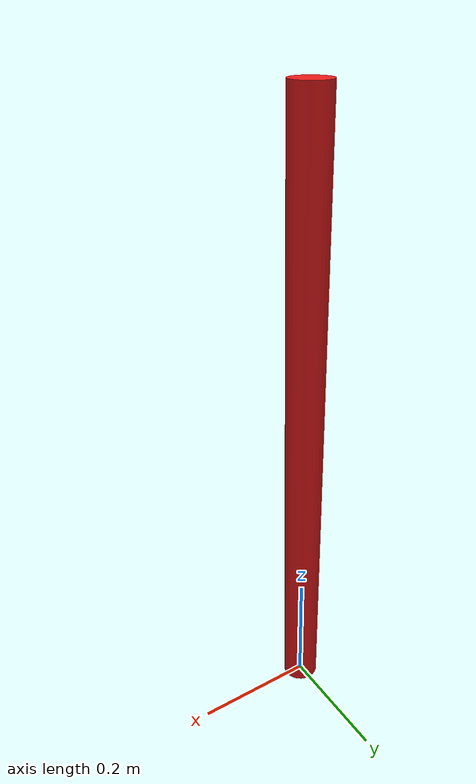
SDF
<?xml version="1.0"?>
<sdf version="1.6">
  <model name="target_flag">
    <pose>0 0 0.5 0 0 0</pose> <!-- Half height above ground -->
    <static>true</static>

    <link name="link">
      <!-- Visual -->
      <visual name="visual">
        <geometry>
          <cylinder>
            <radius>0.03</radius>
            <length>1.0</length>
          </cylinder>
        </geometry>
        <material>
          <ambient>0.9 0.1 0.1 1</ambient>  <!-- Higher saturation red -->
          <diffuse>0.9 0.1 0.1 1</diffuse>  <!-- Higher saturation red -->
          <specular>0.1 0.1 0.1 1</specular>
        </material>
        <laser_retro>500</laser_retro>
      </visual>
    </link>
  </model>
</sdf>
